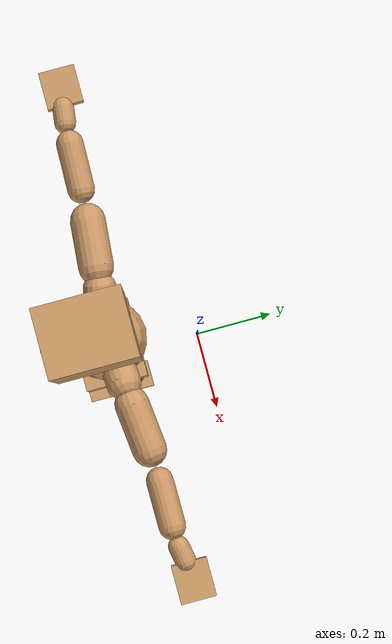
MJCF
<mujoco model="humanoid">
  <option integrator="implicitfast" />

  <visual>
    <global offwidth="1280" offheight="960" />
    <headlight active="1" ambient="0.34 0.34 0.34" diffuse="0.5 0.5 0.5" />
  </visual>

  <default>
    <joint damping="2" stiffness="2" armature="0.01" limited="true" solimplimit="0 .99 .01" />
    <geom condim="1" friction="0.7 0.005 0.0001" solimp=".99 .99 .003" solref="0.015 1" margin="0.001" rgba="0.8 0.6 .4 1" />
    <default class="smplcontact">
      <geom condim="3" friction="1. 0.005 0.0001" solref="0.015 1" solimp="0.98 0.98 0.001" priority="1" />
    </default>
    <default class="stiff_medium">
      <joint stiffness="10" />
    </default>
    <default class="stiff_medium_higher">
      <joint stiffness="50" />
    </default>
    <default class="stiff_high">
      <joint stiffness="100" />
    </default>
  </default>

  <asset>
    <texture type="skybox" builtin="gradient" rgb1="0.99 0.99 0.99" rgb2="0.608 0.828 0.892" width="100" />
    <texture builtin="flat" height="1278" mark="cross" markrgb="1 1 1" name="texgeom" random="0.01" rgb1="0.8 0.6 0.4" rgb2="0.8 0.6 0.4" type="cube" width="127" />
    <texture name="texplane" type="2d" builtin="checker" markrgb="1 1 1" rgb1="0.756 0.772 0.76" rgb2="0.6 0.6 0.6" width="100" height="100" />
    <material name="MatPlane" reflectance="0.5" texture="texplane" texrepeat="1 1" texuniform="true" />
    <material name="geom" texture="texgeom" texuniform="true" />
  </asset>

  <worldbody>
    <light name="tracking_light" pos="0 0 7" dir="0 0 -1" directional="true" cutoff="100" exponent="1" diffuse="1 1 1" specular="0.1 0.1 0.1" mode="trackcom" />
    <camera name="back" pos="0 3 2.4" xyaxes="-1 0 0 0 -1 2" mode="trackcom" />
    <camera name="side" pos="-3 0 2.4" xyaxes="0 -1 0 1 0 2" mode="trackcom" />
    <camera name="front_side" pos="-2.8 -2.8 0.8" xyaxes="0.5 -0.5 0 0.1 0.1 1" mode="trackcom" />
    <geom condim="3" name="floor" pos="0 0 0" rgba="1 1 1 1" size="100 100 .2" type="plane" material="MatPlane" />
    <body name="Pelvis" pos="-0.0018 -0.2233 0.584578" euler="90 0 0">
      <site name="Pelvis" size="0.01" />
      <freejoint name="Pelvis" />
      <geom type="box" pos="-0.0000 -0.0121 -0.0055" size="0.090865 0.06137 0.07055" quat="1.0000 0.0000 0.0000 0.0000" density="3165.830099" name="Pelvis" />
      <body name="L_Hip" pos="0.04309 -0.056668 -0.004216">
        <joint name="L_Hip_x" type="hinge" pos="0 0 0" axis="1 0 0" stiffness="1.964248617021277" range="-160.0 22.92" class="stiff_medium" damping="2.340292171636988" armature="0.0012392564433294651" />
        <joint name="L_Hip_y" type="hinge" pos="0 0 0" axis="0 1 0" stiffness="1.9704117021276593" range="-70.0 70.0" class="stiff_medium" damping="1.678639269691176" armature="0.001430071590981022" />
        <joint name="L_Hip_z" type="hinge" pos="0 0 0" axis="0 0 1" stiffness="1.9691456382978723" range="-28.65 90.0" class="stiff_medium" damping="1.5619571931135656" armature="0.0012389689343791207" />
        <geom type="capsule" density="2040.816327" fromto="0.004278 -0.0465 -0.000558 0.016988 -0.186124 -0.002232" size="0.04305" name="L_Hip" />
        <body name="L_Knee" pos="0.021266 -0.232624 -0.00279">
          <joint name="L_Knee_x" type="hinge" pos="0 0 0" axis="1 0 0" range="-5.16 171.89" damping="1.2721896021680386" stiffness="0.39839951063829787" armature="0.0012695064412788165" />
          <joint name="L_Knee_y" type="hinge" pos="0 0 0" axis="0 1 0" range="-4.58 6.88" damping="1.3605686131687174" stiffness="0.3950234042553191" armature="0.0014644282237447016" />
          <joint name="L_Knee_z" type="hinge" pos="0 0 0" axis="0 0 1" range="-6.88 4.58" damping="1.2747945573324078" stiffness="0.4004859574468085" armature="0.0012680697141080246" />
          <geom type="capsule" density="1234.567901" fromto="-0.001674 -0.049352 -0.005394 -0.006758 -0.197408 -0.0217" size="0.03787" name="L_Knee" />
          <body name="L_Ankle" pos="-0.008432 -0.24676 -0.027094">
            <joint name="L_Ankle_x" type="hinge" pos="0 0 0" axis="1 0 0" range="-45.84 45.84" class="stiff_medium" damping="1.0508648170214139" stiffness="2.1265999999999994" armature="0.0014424653641878144" />
            <joint name="L_Ankle_y" type="hinge" pos="0 0 0" axis="0 1 0" range="-74.48 22.92" class="stiff_medium" damping="0.5270441279637954" stiffness="2.1265999999999994" armature="0.001451328217295828" />
            <joint name="L_Ankle_z" type="hinge" pos="0 0 0" axis="0 0 1" range="-4.58 4.58" class="stiff_medium" damping="1.0749520572058273" stiffness="2.1265999999999994" armature="0.0015093497252931655" />
            <geom type="box" pos="0.014446 -0.014818 0.015004" size="0.03381 0.03248 0.0595" quat="1.0000 0.0000 0.0000 0.0000" density="449.071558" name="L_Ankle" class="smplcontact" />
            <body name="L_Toe" pos="0.016368 -0.034596 0.073966">
              <joint name="L_Toe_x" type="hinge" pos="0 0 0" axis="1 0 0" range="-91.67 22.92" stiffness="0.42531999999999986" armature="0.0015429928969774396" damping="0.36228876298953694"/>
              <joint name="L_Toe_y" type="hinge" pos="0 0 0" axis="0 1 0" range="-4.58 4.58" stiffness="0.42531999999999986" armature="0.001583674228747301" damping="0.3670336014510938"/>
              <joint name="L_Toe_z" type="hinge" pos="0 0 0" axis="0 0 1" range="-4.58 4.58" stiffness="0.42531999999999986" armature="0.0016659296919228983" damping="0.37644474138142686"/>
              <geom type="box" pos="-0.00186 0.00341 0.015376" size="0.03346 0.014 0.03472" quat="1.0000 0.0000 0.0000 0.0000" density="423.206892" name="L_Toe" class="smplcontact" />
            </body>
          </body>
        </body>
      </body>
      <body name="R_Hip" pos="-0.041974 -0.05611 -0.002666">
        <joint name="R_Hip_x" type="hinge" pos="0 0 0" axis="1 0 0" stiffness="1.964248617021277" range="-160.0 22.92" class="stiff_medium" damping="2.340292171636988" armature="0.0012392564433294651" />
        <joint name="R_Hip_y" type="hinge" pos="0 0 0" axis="0 1 0" stiffness="1.9704117021276593" range="-70.0 70.0" class="stiff_medium" damping="1.678639269691176" armature="0.001430071590981022" />
        <joint name="R_Hip_z" type="hinge" pos="0 0 0" axis="0 0 1" stiffness="1.9691456382978723" range="-90.0 28.65" class="stiff_medium" damping="1.5619571931135656" armature="0.0012389689343791207" />
        <geom type="capsule" density="2040.816327" fromto="-0.004774 -0.04743 -0.001116 -0.018972 -0.189782 -0.004402" size="0.04242" name="R_Hip" />
        <body name="R_Knee" pos="-0.023746 -0.237212 -0.005518">
          <joint name="R_Knee_x" type="hinge" pos="0 0 0" axis="1 0 0" range="-5.16 171.89" damping="1.2721896021680386" stiffness="0.39839951063829787" armature="0.0012695064412788165" />
          <joint name="R_Knee_y" type="hinge" pos="0 0 0" axis="0 1 0" range="-6.88 4.58" damping="1.3605686131687174" stiffness="0.3950234042553191" armature="0.0014644282237447016" />
          <joint name="R_Knee_z" type="hinge" pos="0 0 0" axis="0 0 1" range="-4.58 6.88" damping="1.2747945573324078" stiffness="0.4004859574468085" armature="0.0012680697141080246" />
          <geom type="capsule" density="1234.567901" fromto="0.001984 -0.049414 -0.00527 0.007812 -0.197594 -0.020956" size="0.03787" name="R_Knee" />
          <body name="R_Ankle" pos="0.009796 -0.247008 -0.026226">
            <joint name="R_Ankle_x" type="hinge" pos="0 0 0" axis="1 0 0" range="-45.84 45.84" class="stiff_medium" damping="1.0508648170214139" stiffness="2.1265999999999994" armature="0.0014424653641878144" />
            <joint name="R_Ankle_y" type="hinge" pos="0 0 0" axis="0 1 0" range="-22.92 74.48" class="stiff_medium" damping="0.5270441279637954" stiffness="2.1265999999999994" armature="0.001451328217295828" />
            <joint name="R_Ankle_z" type="hinge" pos="0 0 0" axis="0 0 1" range="-4.58 4.58" class="stiff_medium" damping="1.0749520572058273" stiffness="2.1265999999999994" armature="0.0015093497252931655" />
            <geom type="box" pos="-0.013144 -0.010788 0.015872" size="0.03381 0.03346 0.06055" quat="1.0000 0.0000 0.0000 0.0000" density="434.700981" name="R_Ankle" class="smplcontact" />
            <body name="R_Toe" pos="-0.015748 -0.029822 0.076446">
              <joint name="R_Toe_x" type="hinge" pos="0 0 0" axis="1 0 0" range="-91.67 22.92" stiffness="0.42531999999999986" armature="0.0015429928969774396" damping="0.36228876298953694"/>
              <joint name="R_Toe_y" type="hinge" pos="0 0 0" axis="0 1 0" range="-4.58 4.58" stiffness="0.42531999999999986" armature="0.001583674228747301" damping="0.3670336014510938"/>
              <joint name="R_Toe_z" type="hinge" pos="0 0 0" axis="0 0 1" range="-4.58 4.58" stiffness="0.42531999999999986" armature="0.0016659296919228983" damping="0.37644474138142686"/>
              <geom type="box" pos="0.002604 0.00279 0.014074" size="0.03353 0.01512 0.03451" quat="1.0000 0.0000 0.0000 0.0000" density="407.384095" name="R_Toe" class="smplcontact" />
            </body>
          </body>
        </body>
      </body>
      <body name="Torso" pos="-0.001875 0.08175 -0.020025">
        <joint name="Torso_x" type="hinge" pos="0 0 0" axis="1 0 0" range="-25.78 57.3" class="stiff_medium" damping="8.942708721868092" stiffness="6.05659090909091" armature="0.005868504098137897" />
        <joint name="Torso_y" type="hinge" pos="0 0 0" axis="0 1 0" range="-57.3 57.3" class="stiff_high" damping="6.516377452705331" stiffness="63.299669767441856" armature="0.0016770693773811485" />
        <joint name="Torso_z" type="hinge" pos="0 0 0" axis="0 0 1" range="-34.38 34.38" class="stiff_high" damping="10.087002935103227" stiffness="57.75292820512819" armature="0.0044044359037255865" />
        <geom type="capsule" density="2040.816327" fromto="0.001875 0.0456 0.000375 0.00225 0.055725 0.00045" size="0.065365" name="Torso" />
        <body name="Spine" pos="0.004125 0.1014 0.000825">
          <joint name="Spine_x" type="hinge" pos="0 0 0" axis="1 0 0" stiffness="6.635262045454545" range="-25.78 57.3" class="stiff_medium" damping="10.546158586263955" armature="0.007449858057331447" />
          <joint name="Spine_y" type="hinge" pos="0 0 0" axis="0 1 0" stiffness="6.90587" range="-57.3 57.3" class="stiff_high" damping="2.7061297424480735" armature="0.0016569097609538327" />
          <joint name="Spine_z" type="hinge" pos="0 0 0" axis="0 0 1" stiffness="14.152287368421053" range="-34.38 34.38" class="stiff_high" damping="6.561485086504837" armature="0.004225179433664929" />
          <geom type="capsule" density="2040.816327" fromto="0.000525 0.01785 0.00855 0.0006 0.021825 0.0105" size="0.064175" name="Spine" />
          <body name="Chest" pos="0.001125 0.039675 0.01905">
            <joint name="Chest_x" type="hinge" pos="0 0 0" axis="1 0 0" stiffness="7.712242631578947" range="-25.78 57.3" class="stiff_medium" damping="12.02954776023271" armature="0.008339411402459003" />
            <joint name="Chest_y" type="hinge" pos="0 0 0" axis="0 1 0" stiffness="6.385" range="-57.3 57.3" class="stiff_high" damping="2.5711600290813834" armature="0.001617772096502002" />
            <joint name="Chest_z" type="hinge" pos="0 0 0" axis="0 0 1" stiffness="15.812202285714285" range="-34.38 34.38" class="stiff_high" damping="6.774111260432403" armature="0.004030693664047288" />
            <geom type="capsule" density="2040.816327" fromto="-0.000675 0.05115 -0.012975 -0.00075 0.062475 -0.0159" size="0.08517" name="Chest" />
            <body name="Neck" pos="-0.0021 0.160425 -0.032175">
              <joint name="Neck_x" type="hinge" pos="0 0 0" axis="1 0 0" range="-28.65 57.3" class="stiff_medium_higher" damping="16.25255180453911" stiffness="76.60756249999999" armature="0.01724016738942891" />
              <joint name="Neck_y" type="hinge" pos="0 0 0" axis="0 1 0" range="-40.11 40.11" class="stiff_medium_higher" damping="16.671741462280213" stiffness="76.3876680851064" armature="0.018193182901947075" />
              <joint name="Neck_z" type="hinge" pos="0 0 0" axis="0 0 1" range="-40.11 40.11" class="stiff_medium_higher" damping="16.419534288795518" stiffness="78.09847765957448" armature="0.01726033044050507" />
              <geom type="capsule" density="1000" fromto="0.00075 0.00975 0.007725 0.003075 0.039 0.030825" size="0.03706" name="Neck" />
              <body name="Head" pos="0.00546 0.06825 0.053865">
                <joint name="Head_x" type="hinge" pos="0 0 0" axis="1 0 0" range="-28.65 57.3" class="stiff_medium_higher" damping="3.416195249245133" stiffness="79.84595" armature="0.018270165833340665" />
                <joint name="Head_y" type="hinge" pos="0 0 0" axis="0 1 0" range="-40.11 40.11" class="stiff_medium_higher" damping="3.5706265532181534" stiffness="79.84595" armature="0.019959331034552392" />
                <joint name="Head_z" type="hinge" pos="0 0 0" axis="0 0 1" range="-40.11 40.11" class="stiff_medium_higher" damping="3.408366896374547" stiffness="79.84595" armature="0.018186528089874726" />
                <geom type="box" pos="-0.00441 0.09198 -0.01218" size="0.06969 0.13271 0.0874" quat="1.0000 0.0000 0.0000 0.0000" density="1018.069894" name="Head" />
                <geom type="capsule" name="nose" size="0.023 0.0115" pos="0 0.0735 0.0525" quat="1 0 0 0" mass="0" contype="0" conaffinity="0" />
              </body>
            </body>
            <body name="L_Thorax" pos="0.05122 0.079105 -0.022165">
              <joint name="L_Thorax_x" type="hinge" pos="0 0 0" axis="1 0 0" range="-10.89 4.58" class="stiff_medium_higher" damping="3.56127712657367" stiffness="10.660500531914895" armature="0.0014871129566440117" />
              <joint name="L_Thorax_y" type="hinge" pos="0 0 0" axis="0 1 0" range="-28.65 17.19" class="stiff_medium_higher" damping="3.4438596947522244" stiffness="10.642045212765957" armature="0.0013930792155101555" />
              <joint name="L_Thorax_z" type="hinge" pos="0 0 0" axis="0 0 1" range="-31.51 40.11" class="stiff_medium_higher" damping="3.443909530947841" stiffness="10.643002127659575" armature="0.0013929942786689942" />
              <geom type="capsule" density="1000" fromto="0.01183 0.003965 -0.00117 0.04732 0.01586 -0.004615" size="0.03647" name="L_Thorax" />
              <body name="L_Shoulder" pos="0.05915 0.019825 -0.005785">
                <joint name="L_Shoulder_x" type="hinge" pos="0 0 0" axis="1 0 0" range="-97.4 97.4" class="stiff_medium" damping="1.0818658282988043" stiffness="2.1337828723404253" armature="0.0015236811028232118" />
                <joint name="L_Shoulder_y" type="hinge" pos="0 0 0" axis="0 1 0" range="-108.86 80.21" class="stiff_medium" damping="1.034835579648563" stiffness="2.1304098936170215" armature="0.001396294519184475" />
                <joint name="L_Shoulder_z" type="hinge" pos="0 0 0" axis="0 0 1" range="-97.4 85.94" class="stiff_medium" damping="1.0347169216992047" stiffness="2.1300911702127663" armature="0.0013961832075318795" />
                <geom type="capsule" density="1000" fromto="0.033735 -0.00169 -0.003575 0.135005 -0.00663 -0.0143" size="0.03619" name="L_Shoulder" />
                <body name="L_Elbow" pos="0.16874 -0.00832 -0.017875">
                  <joint name="L_Elbow_x" type="hinge" pos="0 0 0" axis="1 0 0" range="-17.19 4.58" damping="0.9216432868582979" stiffness="0.42935538297872344" armature="0.001582700731162017" />
                  <joint name="L_Elbow_y" type="hinge" pos="0 0 0" axis="0 1 0" range="-180.0 17.19" damping="0.8705183077487909" stiffness="0.42935406382978725" armature="0.0014119854692722623" />
                  <joint name="L_Elbow_z" type="hinge" pos="0 0 0" axis="0 0 1" range="-100.84 4.58" damping="0.8704106557696368" stiffness="0.42942553191489363" armature="0.0014114013320055286" />
                  <geom type="capsule" density="1000" fromto="0.03237 0.00117 -0.00013 0.12961 0.00468 -0.000585" size="0.02835" name="L_Elbow" />
                  <body name="L_Wrist" pos="0.16198 0.00585 -0.00078">
                    <joint name="L_Wrist_x" type="hinge" pos="0 0 0" axis="1 0 0" range="-180.0 22.92" stiffness="0.4400977872340426" armature="0.0016013225779245202" damping="0.3754300262878541"/>
                    <joint name="L_Wrist_y" type="hinge" pos="0 0 0" axis="0 1 0" range="-17.19 17.19" stiffness="0.4392689574468085" armature="0.0014664946634854348" damping="0.3589388755569826"/>
                    <joint name="L_Wrist_z" type="hinge" pos="0 0 0" axis="0 0 1" range="-22.92 22.92" stiffness="0.4395612340425532" armature="0.001458940479939788" damping="0.3581322877811963"/>
                    <geom type="capsule" density="1000" fromto="0.01092 -0.00104 -0.00195 0.04368 -0.004225 -0.0078" size="0.02226" name="L_Wrist" class="smplcontact" />
                    <body name="L_Hand" pos="0.0546 -0.00533 -0.009685">
                      <joint name="L_Hand_x" type="hinge" pos="0 0 0" axis="1 0 0" range="-17.19 17.19" stiffness="0.4459000000000003" armature="0.0016706133446854452" damping="0.3859861371591577"/>
                      <joint name="L_Hand_y" type="hinge" pos="0 0 0" axis="0 1 0" range="-51.57 51.57" stiffness="0.4459000000000003" armature="0.0015587158200069523" damping="0.37283545543338564"/>
                      <joint name="L_Hand_z" type="hinge" pos="0 0 0" axis="0 0 1" range="-91.67 91.67" stiffness="0.4459000000000003" armature="0.0015288880059389088" damping="0.3692509070667694"/>
                      <geom type="box" pos="0.032045 0.00065 -0.00377" size="0.04095 0.01106 0.03766" quat="1.0000 0.0000 0.0000 0.0000" density="400.552564" name="L_Hand" class="smplcontact" />
                    </body>
                  </body>
                </body>
              </body>
            </body>
            <body name="R_Thorax" pos="-0.05317 0.07722 -0.02509">
              <joint name="R_Thorax_x" type="hinge" pos="0 0 0" axis="1 0 0" range="-10.89 4.58" class="stiff_medium_higher" damping="3.56127712657367" stiffness="10.660500531914895" armature="0.0014871129566440117" />
              <joint name="R_Thorax_y" type="hinge" pos="0 0 0" axis="0 1 0" range="-17.19 28.65" class="stiff_medium_higher" damping="3.4438596947522244" stiffness="10.642045212765957" armature="0.0013930792155101555" />
              <joint name="R_Thorax_z" type="hinge" pos="0 0 0" axis="0 0 1" range="-40.11 31.51" class="stiff_medium_higher" damping="3.443909530947841" stiffness="10.643002127659575" armature="0.0013929942786689942" />
              <geom type="capsule" density="1000" fromto="-0.01248 0.004225 -0.00117 -0.04992 0.0169 -0.004745" size="0.03577" name="R_Thorax" />
              <body name="R_Shoulder" pos="-0.0624 0.02119 -0.005915">
                <joint name="R_Shoulder_x" type="hinge" pos="0 0 0" axis="1 0 0" range="-97.4 97.4" class="stiff_medium" damping="1.0818658282988043" stiffness="2.1337828723404253" armature="0.0015236811028232118" />
                <joint name="R_Shoulder_y" type="hinge" pos="0 0 0" axis="0 1 0" range="-80.21 108.86" class="stiff_medium" damping="1.034835579648563" stiffness="2.1304098936170215" armature="0.001396294519184475" />
                <joint name="R_Shoulder_z" type="hinge" pos="0 0 0" axis="0 0 1" range="-85.94 97.4" class="stiff_medium" damping="1.0347169216992047" stiffness="2.1300911702127663" armature="0.0013961832075318795" />
                <geom type="capsule" density="1000" fromto="-0.032955 -0.001755 -0.002795 -0.13195 -0.006955 -0.011115" size="0.03717" name="R_Shoulder" />
                <body name="R_Elbow" pos="-0.164905 -0.008645 -0.01391">
                  <joint name="R_Elbow_x" type="hinge" pos="0 0 0" axis="1 0 0" range="-17.19 4.58" damping="0.9216432868582979" stiffness="0.42935538297872344" armature="0.001582700731162017" />
                  <joint name="R_Elbow_y" type="hinge" pos="0 0 0" axis="0 1 0" range="-17.19 180.0" damping="0.8705183077487909" stiffness="0.42935406382978725" armature="0.0014119854692722623" />
                  <joint name="R_Elbow_z" type="hinge" pos="0 0 0" axis="0 0 1" range="-4.58 100.84" damping="0.8704106557696368" stiffness="0.42942553191489363" armature="0.0014114013320055286" />
                  <geom type="capsule" density="1000" fromto="-0.033215 0.00104 -0.000715 -0.13273 0.00403 -0.00286" size="0.02856" name="R_Elbow" />
                  <body name="R_Wrist" pos="-0.165945 0.00507 -0.00364">
                    <joint name="R_Wrist_x" type="hinge" pos="0 0 0" axis="1 0 0" range="-180.0 22.92" stiffness="0.4400977872340426" armature="0.0016013225779245202" damping="0.3754300262878541"/>
                    <joint name="R_Wrist_y" type="hinge" pos="0 0 0" axis="0 1 0" range="-17.19 17.19" stiffness="0.4392689574468085" armature="0.0014664946634854348" damping="0.3589388755569826"/>
                    <joint name="R_Wrist_z" type="hinge" pos="0 0 0" axis="0 0 1" range="-22.92 22.92" stiffness="0.4395612340425532" armature="0.001458940479939788" damping="0.3581322877811963"/>
                    <geom type="capsule" density="1000" fromto="-0.010985 -0.00078 -0.001365 -0.044005 -0.003185 -0.005395" size="0.02282" name="R_Wrist" class="smplcontact" />
                    <body name="R_Hand" pos="-0.05499 -0.003965 -0.006695">
                      <joint name="R_Hand_x" type="hinge" pos="0 0 0" axis="1 0 0" range="-17.19 17.19" stiffness="0.4459000000000003" armature="0.0016706133446854452" damping="0.3859861371591577"/>
                      <joint name="R_Hand_y" type="hinge" pos="0 0 0" axis="0 1 0" range="-51.57 51.57" stiffness="0.4459000000000003" armature="0.0015587158200069523" damping="0.37283545543338564"/>
                      <joint name="R_Hand_z" type="hinge" pos="0 0 0" axis="0 0 1" range="-91.67 91.67" stiffness="0.4459000000000003" armature="0.0015288880059389088" damping="0.3692509070667694"/>
                      <geom type="box" pos="-0.03003 -0.000585 -0.005135" size="0.03983 0.01148 0.03822" quat="1.0000 0.0000 0.0000 0.0000" density="403.679611" name="R_Hand" class="smplcontact" />
                    </body>
                  </body>
                </body>
              </body>
            </body>
          </body>
        </body>
      </body>
    </body>
  </worldbody>
  <contact>
    <exclude body1="Torso" body2="Chest" />
    <exclude body1="Head" body2="Chest" />
    <exclude body1="R_Knee" body2="R_Toe" />
    <exclude body1="R_Knee" body2="L_Ankle" />
    <exclude body1="R_Knee" body2="L_Toe" />
    <exclude body1="L_Knee" body2="L_Toe" />
    <exclude body1="L_Knee" body2="R_Ankle" />
    <exclude body1="L_Knee" body2="R_Toe" />
    <exclude body1="L_Shoulder" body2="Chest" />
    <exclude body1="R_Shoulder" body2="Chest" />
  </contact>
  <sensor>
    <framelinvel name="sensor_Pelvis_framelinvel" objtype="xbody" objname="Pelvis" />
    <framelinvel name="sensor_L_Hip_framelinvel" objtype="xbody" objname="L_Hip" />
    <framelinvel name="sensor_L_Knee_framelinvel" objtype="xbody" objname="L_Knee" />
    <framelinvel name="sensor_L_Ankle_framelinvel" objtype="xbody" objname="L_Ankle" />
    <framelinvel name="sensor_L_Toe_framelinvel" objtype="xbody" objname="L_Toe" />
    <framelinvel name="sensor_R_Hip_framelinvel" objtype="xbody" objname="R_Hip" />
    <framelinvel name="sensor_R_Knee_framelinvel" objtype="xbody" objname="R_Knee" />
    <framelinvel name="sensor_R_Ankle_framelinvel" objtype="xbody" objname="R_Ankle" />
    <framelinvel name="sensor_R_Toe_framelinvel" objtype="xbody" objname="R_Toe" />
    <framelinvel name="sensor_Torso_framelinvel" objtype="xbody" objname="Torso" />
    <framelinvel name="sensor_Spine_framelinvel" objtype="xbody" objname="Spine" />
    <framelinvel name="sensor_Chest_framelinvel" objtype="xbody" objname="Chest" />
    <framelinvel name="sensor_Neck_framelinvel" objtype="xbody" objname="Neck" />
    <framelinvel name="sensor_Head_framelinvel" objtype="xbody" objname="Head" />
    <framelinvel name="sensor_L_Thorax_framelinvel" objtype="xbody" objname="L_Thorax" />
    <framelinvel name="sensor_L_Shoulder_framelinvel" objtype="xbody" objname="L_Shoulder" />
    <framelinvel name="sensor_L_Elbow_framelinvel" objtype="xbody" objname="L_Elbow" />
    <framelinvel name="sensor_L_Wrist_framelinvel" objtype="xbody" objname="L_Wrist" />
    <framelinvel name="sensor_L_Hand_framelinvel" objtype="xbody" objname="L_Hand" />
    <framelinvel name="sensor_R_Thorax_framelinvel" objtype="xbody" objname="R_Thorax" />
    <framelinvel name="sensor_R_Shoulder_framelinvel" objtype="xbody" objname="R_Shoulder" />
    <framelinvel name="sensor_R_Elbow_framelinvel" objtype="xbody" objname="R_Elbow" />
    <framelinvel name="sensor_R_Wrist_framelinvel" objtype="xbody" objname="R_Wrist" />
    <framelinvel name="sensor_R_Hand_framelinvel" objtype="xbody" objname="R_Hand" />
    <frameangvel name="sensor_Pelvis_frameangvel" objtype="xbody" objname="Pelvis" />
    <frameangvel name="sensor_L_Hip_frameangvel" objtype="xbody" objname="L_Hip" />
    <frameangvel name="sensor_L_Knee_frameangvel" objtype="xbody" objname="L_Knee" />
    <frameangvel name="sensor_L_Ankle_frameangvel" objtype="xbody" objname="L_Ankle" />
    <frameangvel name="sensor_L_Toe_frameangvel" objtype="xbody" objname="L_Toe" />
    <frameangvel name="sensor_R_Hip_frameangvel" objtype="xbody" objname="R_Hip" />
    <frameangvel name="sensor_R_Knee_frameangvel" objtype="xbody" objname="R_Knee" />
    <frameangvel name="sensor_R_Ankle_frameangvel" objtype="xbody" objname="R_Ankle" />
    <frameangvel name="sensor_R_Toe_frameangvel" objtype="xbody" objname="R_Toe" />
    <frameangvel name="sensor_Torso_frameangvel" objtype="xbody" objname="Torso" />
    <frameangvel name="sensor_Spine_frameangvel" objtype="xbody" objname="Spine" />
    <frameangvel name="sensor_Chest_frameangvel" objtype="xbody" objname="Chest" />
    <frameangvel name="sensor_Neck_frameangvel" objtype="xbody" objname="Neck" />
    <frameangvel name="sensor_Head_frameangvel" objtype="xbody" objname="Head" />
    <frameangvel name="sensor_L_Thorax_frameangvel" objtype="xbody" objname="L_Thorax" />
    <frameangvel name="sensor_L_Shoulder_frameangvel" objtype="xbody" objname="L_Shoulder" />
    <frameangvel name="sensor_L_Elbow_frameangvel" objtype="xbody" objname="L_Elbow" />
    <frameangvel name="sensor_L_Wrist_frameangvel" objtype="xbody" objname="L_Wrist" />
    <frameangvel name="sensor_L_Hand_frameangvel" objtype="xbody" objname="L_Hand" />
    <frameangvel name="sensor_R_Thorax_frameangvel" objtype="xbody" objname="R_Thorax" />
    <frameangvel name="sensor_R_Shoulder_frameangvel" objtype="xbody" objname="R_Shoulder" />
    <frameangvel name="sensor_R_Elbow_frameangvel" objtype="xbody" objname="R_Elbow" />
    <frameangvel name="sensor_R_Wrist_frameangvel" objtype="xbody" objname="R_Wrist" />
    <frameangvel name="sensor_R_Hand_frameangvel" objtype="xbody" objname="R_Hand" />
    <subtreelinvel name="Chest_subtreelinvel" body="Chest" />
    <gyro name="Pelvis_gyro" site="Pelvis" />
  </sensor>
<actuator>
    <general name="L_Hip_x" joint="L_Hip_x" biastype="affine" gainprm="56.43876810318005" biasprm="-42.29513629774722 -35.35647510638299 -0.31203895621826505" ctrllimited="true" ctrlrange="-1 1" forcerange="-70.71295021276597 70.71295021276597" />
    <general name="L_Hip_y" joint="L_Hip_y" biastype="affine" gainprm="43.3316164956613" biasprm="0.0 -35.46741063829787 -0.33572785393823523" ctrllimited="true" ctrlrange="-1 1" forcerange="-70.93482127659574 70.93482127659574" />
    <general name="L_Hip_z" joint="L_Hip_z" biastype="affine" gainprm="36.69994871744894" biasprm="18.97633252267587 -35.4446214893617 -0.3123914386227131" ctrllimited="true" ctrlrange="-1 1" forcerange="-70.8892429787234 70.8892429787234" />
    <general name="L_Knee_x" joint="L_Knee_x" biastype="affine" gainprm="55.39934229201344" biasprm="52.17019113441062 -35.85595595744681 -0.31804740054200964" ctrllimited="true" ctrlrange="-1 1" forcerange="-71.71191191489362 71.71191191489362" />
    <general name="L_Knee_y" joint="L_Knee_y" biastype="affine" gainprm="3.5554725200650115" biasprm="0.7135765092626114 -35.55210638297872 -0.34014215329217934" ctrllimited="true" ctrlrange="-1 1" forcerange="-71.10421276595744 71.10421276595744" />
    <general name="L_Knee_z" joint="L_Knee_z" biastype="affine" gainprm="3.6046391202019" biasprm="-0.7234441515239416 -36.04373617021276 -0.31869863933310194" ctrllimited="true" ctrlrange="-1 1" forcerange="-72.08747234042552 72.08747234042552" />
    <general name="L_Ankle_x" joint="L_Ankle_x" biastype="affine" gainprm="15.31264786788833" biasprm="0.0 -19.139399999999995 -0.35028827234047133" ctrllimited="true" ctrlrange="-1 1" forcerange="-38.27879999999999 38.27879999999999" />
    <general name="L_Ankle_y" joint="L_Ankle_y" biastype="affine" gainprm="16.26801813189707" biasprm="-8.611694197952904 -19.139399999999995 -0.35136275197586364" ctrllimited="true" ctrlrange="-1 1" forcerange="-38.27879999999999 38.27879999999999" />
    <general name="L_Ankle_z" joint="L_Ankle_z" biastype="affine" gainprm="1.5299286046014078" biasprm="0.0 -19.139399999999995 -0.3583173524019424" ctrllimited="true" ctrlrange="-1 1" forcerange="-38.27879999999999 38.27879999999999" />
    <general name="L_Toe_x" joint="L_Toe_x" biastype="affine" gainprm="15.3113116857009" biasprm="-9.18625253854557 -15.311519999999994 -0.14491550519581478" ctrllimited="true" ctrlrange="-1 1" forcerange="-30.62303999999999 30.62303999999999" />
    <general name="L_Toe_y" joint="L_Toe_y" biastype="affine" gainprm="1.2239428836811264" biasprm="0.0 -15.311519999999994 -0.14681344058043752" ctrllimited="true" ctrlrange="-1 1" forcerange="-30.62303999999999 30.62303999999999" />
    <general name="L_Toe_z" joint="L_Toe_z" biastype="affine" gainprm="1.2239428836811264" biasprm="0.0 -15.311519999999994 -0.15057789655257076" ctrllimited="true" ctrlrange="-1 1" forcerange="-30.62303999999999 30.62303999999999" />
    <general name="R_Hip_x" joint="R_Hip_x" biastype="affine" gainprm="56.43876810318005" biasprm="-42.29513629774722 -35.35647510638299 -0.31203895621826505" ctrllimited="true" ctrlrange="-1 1" forcerange="-70.71295021276597 70.71295021276597" />
    <general name="R_Hip_y" joint="R_Hip_y" biastype="affine" gainprm="43.3316164956613" biasprm="0.0 -35.46741063829787 -0.33572785393823523" ctrllimited="true" ctrlrange="-1 1" forcerange="-70.93482127659574 70.93482127659574" />
    <general name="R_Hip_z" joint="R_Hip_z" biastype="affine" gainprm="36.69994871744894" biasprm="-18.97633252267587 -35.4446214893617 -0.3123914386227131" ctrllimited="true" ctrlrange="-1 1" forcerange="-70.8892429787234 70.8892429787234" />
    <general name="R_Knee_x" joint="R_Knee_x" biastype="affine" gainprm="55.39934229201344" biasprm="52.17019113441062 -35.85595595744681 -0.31804740054200964" ctrllimited="true" ctrlrange="-1 1" forcerange="-71.71191191489362 71.71191191489362" />
    <general name="R_Knee_y" joint="R_Knee_y" biastype="affine" gainprm="3.5554725200650115" biasprm="-0.7135765092626114 -35.55210638297872 -0.34014215329217934" ctrllimited="true" ctrlrange="-1 1" forcerange="-71.10421276595744 71.10421276595744" />
    <general name="R_Knee_z" joint="R_Knee_z" biastype="affine" gainprm="3.6046391202019" biasprm="0.7234441515239416 -36.04373617021276 -0.31869863933310194" ctrllimited="true" ctrlrange="-1 1" forcerange="-72.08747234042552 72.08747234042552" />
    <general name="R_Ankle_x" joint="R_Ankle_x" biastype="affine" gainprm="15.31264786788833" biasprm="0.0 -19.139399999999995 -0.35028827234047133" ctrllimited="true" ctrlrange="-1 1" forcerange="-38.27879999999999 38.27879999999999" />
    <general name="R_Ankle_y" joint="R_Ankle_y" biastype="affine" gainprm="16.26801813189707" biasprm="8.611694197952904 -19.139399999999995 -0.35136275197586364" ctrllimited="true" ctrlrange="-1 1" forcerange="-38.27879999999999 38.27879999999999" />
    <general name="R_Ankle_z" joint="R_Ankle_z" biastype="affine" gainprm="1.5299286046014078" biasprm="0.0 -19.139399999999995 -0.3583173524019424" ctrllimited="true" ctrlrange="-1 1" forcerange="-38.27879999999999 38.27879999999999" />
    <general name="R_Toe_x" joint="R_Toe_x" biastype="affine" gainprm="15.3113116857009" biasprm="-9.18625253854557 -15.311519999999994 -0.14491550519581478" ctrllimited="true" ctrlrange="-1 1" forcerange="-30.62303999999999 30.62303999999999" />
    <general name="R_Toe_y" joint="R_Toe_y" biastype="affine" gainprm="1.2239428836811264" biasprm="0.0 -15.311519999999994 -0.14681344058043752" ctrllimited="true" ctrlrange="-1 1" forcerange="-30.62303999999999 30.62303999999999" />
    <general name="R_Toe_z" joint="R_Toe_z" biastype="affine" gainprm="1.2239428836811264" biasprm="0.0 -15.311519999999994 -0.15057789655257076" ctrllimited="true" ctrlrange="-1 1" forcerange="-30.62303999999999 30.62303999999999" />
    <general name="Torso_x" joint="Torso_x" biastype="affine" gainprm="105.38610215345057" biasprm="39.98278695085172 -145.35818181818183 -2.384722325831491" ctrllimited="true" ctrlrange="-1 1" forcerange="-218.03727272727275 218.03727272727275" />
    <general name="Torso_y" joint="Torso_y" biastype="affine" gainprm="151.93039802226622" biasprm="0.0 -151.91920744186046 -1.3032754905410662" ctrllimited="true" ctrlrange="-1 1" forcerange="-227.8788111627907 227.8788111627907" />
    <general name="Torso_z" joint="Torso_z" biastype="affine" gainprm="83.17034260740753" biasprm="0.0 -138.60702769230767 -2.0174005870206453" ctrllimited="true" ctrlrange="-1 1" forcerange="-207.9105415384615 207.9105415384615" />
    <general name="Spine_x" joint="Spine_x" biastype="affine" gainprm="115.45511563074105" biasprm="43.80290376361287 -159.24628909090907 -2.8123089563370547" ctrllimited="true" ctrlrange="-1 1" forcerange="-238.86943363636362 238.86943363636362" />
    <general name="Spine_y" joint="Spine_y" biastype="affine" gainprm="165.75308870405655" biasprm="0.0 -165.74088 -1.3530648712240367" ctrllimited="true" ctrlrange="-1 1" forcerange="-248.61132000000003 248.61132000000003" />
    <general name="Spine_z" joint="Spine_z" biastype="affine" gainprm="101.90397488845841" biasprm="0.0 -169.82744842105262 -2.1871616955016124" ctrllimited="true" ctrlrange="-1 1" forcerange="-254.74117263157893 254.74117263157893" />
    <general name="Chest_x" joint="Chest_x" biastype="affine" gainprm="134.19483039275812" biasprm="50.91262703394 -185.09382315789475 -3.2078794027287225" ctrllimited="true" ctrlrange="-1 1" forcerange="-277.6407347368421 277.6407347368421" />
    <general name="Chest_y" joint="Chest_y" biastype="affine" gainprm="153.25128787182513" biasprm="0.0 -153.23999999999998 -1.2855800145406917" ctrllimited="true" ctrlrange="-1 1" forcerange="-229.85999999999999 229.85999999999999" />
    <general name="Chest_z" joint="Chest_z" biastype="affine" gainprm="113.8562426488112" biasprm="0.0 -189.74642742857142 -2.258037086810801" ctrllimited="true" ctrlrange="-1 1" forcerange="-284.6196411428571 284.6196411428571" />
    <general name="Neck_x" joint="Neck_x" biastype="affine" gainprm="41.371130980664454" biasprm="13.790376993554817 -55.157444999999996 -1.3002041443631287" ctrllimited="true" ctrlrange="-1 1" forcerange="-110.31488999999999 110.31488999999999" />
    <general name="Neck_y" joint="Neck_y" biastype="affine" gainprm="38.50222063319177" biasprm="0.0 -54.99912102127661 -1.3337393169824172" ctrllimited="true" ctrlrange="-1 1" forcerange="-109.99824204255322 109.99824204255322" />
    <general name="Neck_z" joint="Neck_z" biastype="affine" gainprm="39.36453217311414" biasprm="0.0 -56.23090391489363 -1.3135627431036416" ctrllimited="true" ctrlrange="-1 1" forcerange="-112.46180782978726 112.46180782978726" />
    <general name="Head_x" joint="Head_x" biastype="affine" gainprm="28.746659362997704" biasprm="9.5822197876659 -38.326056 -1.3664780996980532" ctrllimited="true" ctrlrange="-1 1" forcerange="-76.652112 76.652112" />
    <general name="Head_y" joint="Head_y" biastype="affine" gainprm="26.83021540546452" biasprm="0.0 -38.326056 -1.4282506212872614" ctrllimited="true" ctrlrange="-1 1" forcerange="-76.652112 76.652112" />
    <general name="Head_z" joint="Head_z" biastype="affine" gainprm="26.83021540546452" biasprm="0.0 -38.326056 -1.363346758549819" ctrllimited="true" ctrlrange="-1 1" forcerange="-76.652112 76.652112" />
    <general name="L_Thorax_x" joint="L_Thorax_x" biastype="affine" gainprm="3.454033325949973" biasprm="-1.4088526365057752 -25.585201276595747 -0.2849021701258936" ctrllimited="true" ctrlrange="-1 1" forcerange="-51.170402553191494 51.170402553191494" />
    <general name="L_Thorax_y" joint="L_Thorax_y" biastype="affine" gainprm="10.217115955812524" biasprm="-2.554278988953131 -25.5409085106383 -0.27550877558017794" ctrllimited="true" ctrlrange="-1 1" forcerange="-51.0818170212766 51.0818170212766" />
    <general name="L_Thorax_z" joint="L_Thorax_z" biastype="affine" gainprm="15.964564626452477" biasprm="1.916996031660029 -25.543205106382977 -0.2755127624758273" ctrllimited="true" ctrlrange="-1 1" forcerange="-51.086410212765955 51.086410212765955" />
    <general name="L_Shoulder_x" joint="L_Shoulder_x" biastype="affine" gainprm="17.41116321227146" biasprm="0.0 -10.242157787234042 -0.28849755421301454" ctrllimited="true" ctrlrange="-1 1" forcerange="-20.484315574468084 20.484315574468084" />
    <general name="L_Shoulder_y" joint="L_Shoulder_y" biastype="affine" gainprm="16.872304466790254" biasprm="-2.556680187092298 -10.225967489361702 -0.2759561545729502" ctrllimited="true" ctrlrange="-1 1" forcerange="-20.451934978723404 20.451934978723404" />
    <general name="L_Shoulder_z" joint="L_Shoulder_z" biastype="affine" gainprm="16.35852072033217" biasprm="-1.0225190763336263 -10.224437617021277 -0.2759245124531213" ctrllimited="true" ctrlrange="-1 1" forcerange="-20.448875234042553 20.448875234042553" />
    <general name="L_Elbow_x" joint="L_Elbow_x" biastype="affine" gainprm="2.9364676037896777" biasprm="-1.7009121030678849 -15.456793787234044 -0.14746292589732765" ctrllimited="true" ctrlrange="-1 1" forcerange="-30.91358757446809 30.91358757446809" />
    <general name="L_Elbow_y" joint="L_Elbow_y" biastype="affine" gainprm="26.598083038398293" biasprm="-21.960717579398686 -15.456746297872341 -0.13928292923980654" ctrllimited="true" ctrlrange="-1 1" forcerange="-30.913492595744682 30.913492595744682" />
    <general name="L_Elbow_z" joint="L_Elbow_z" biastype="affine" gainprm="14.222002375486813" biasprm="-12.986245007250625 -15.45931914893617 -0.13926570492314191" ctrllimited="true" ctrlrange="-1 1" forcerange="-30.91863829787234 30.91863829787234" />
    <general name="L_Wrist_x" joint="L_Wrist_x" biastype="affine" gainprm="4.675980172246772" biasprm="-3.61966767916678 -2.6405867234042555 -0.15017201051514165" ctrllimited="true" ctrlrange="-1 1" forcerange="-5.281173446808511 5.281173446808511" />
    <general name="L_Wrist_y" joint="L_Wrist_y" biastype="affine" gainprm="0.7907423662980114" biasprm="0.0 -2.635613744680851 -0.14357555022279306" ctrllimited="true" ctrlrange="-1 1" forcerange="-5.271227489361702 5.271227489361702" />
    <general name="L_Wrist_z" joint="L_Wrist_z" biastype="affine" gainprm="1.0550246705646051" biasprm="0.0 -2.6373674042553192 -0.14325291511247853" ctrllimited="true" ctrlrange="-1 1" forcerange="-5.2747348085106385 5.2747348085106385" />
    <general name="L_Hand_x" joint="L_Hand_x" biastype="affine" gainprm="0.8026791221070504" biasprm="0.0 -2.6754000000000016 -0.1543944548636631" ctrllimited="true" ctrlrange="-1 1" forcerange="-5.350800000000003 5.350800000000003" />
    <general name="L_Hand_y" joint="L_Hand_y" biastype="affine" gainprm="2.4080373663211505" biasprm="0.0 -2.6754000000000016 -0.14913418217335425" ctrllimited="true" ctrlrange="-1 1" forcerange="-5.350800000000003 5.350800000000003" />
    <general name="L_Hand_z" joint="L_Hand_z" biastype="affine" gainprm="4.280488372516189" biasprm="0.0 -2.6754000000000016 -0.14770036282670776" ctrllimited="true" ctrlrange="-1 1" forcerange="-5.350800000000003 5.350800000000003" />
    <general name="R_Thorax_x" joint="R_Thorax_x" biastype="affine" gainprm="3.454033325949973" biasprm="-1.4088526365057752 -25.585201276595747 -0.2849021701258936" ctrllimited="true" ctrlrange="-1 1" forcerange="-51.170402553191494 51.170402553191494" />
    <general name="R_Thorax_y" joint="R_Thorax_y" biastype="affine" gainprm="10.217115955812524" biasprm="2.5542789889531297 -25.5409085106383 -0.27550877558017794" ctrllimited="true" ctrlrange="-1 1" forcerange="-51.0818170212766 51.0818170212766" />
    <general name="R_Thorax_z" joint="R_Thorax_z" biastype="affine" gainprm="15.964564626452477" biasprm="-1.916996031660029 -25.543205106382977 -0.2755127624758273" ctrllimited="true" ctrlrange="-1 1" forcerange="-51.086410212765955 51.086410212765955" />
    <general name="R_Shoulder_x" joint="R_Shoulder_x" biastype="affine" gainprm="17.41116321227146" biasprm="0.0 -10.242157787234042 -0.28849755421301454" ctrllimited="true" ctrlrange="-1 1" forcerange="-20.484315574468084 20.484315574468084" />
    <general name="R_Shoulder_y" joint="R_Shoulder_y" biastype="affine" gainprm="16.872304466790254" biasprm="2.556680187092298 -10.225967489361702 -0.2759561545729502" ctrllimited="true" ctrlrange="-1 1" forcerange="-20.451934978723404 20.451934978723404" />
    <general name="R_Shoulder_z" joint="R_Shoulder_z" biastype="affine" gainprm="16.35852072033217" biasprm="1.022519076333624 -10.224437617021277 -0.2759245124531213" ctrllimited="true" ctrlrange="-1 1" forcerange="-20.448875234042553 20.448875234042553" />
    <general name="R_Elbow_x" joint="R_Elbow_x" biastype="affine" gainprm="2.9364676037896777" biasprm="-1.7009121030678849 -15.456793787234044 -0.14746292589732765" ctrllimited="true" ctrlrange="-1 1" forcerange="-30.91358757446809 30.91358757446809" />
    <general name="R_Elbow_y" joint="R_Elbow_y" biastype="affine" gainprm="26.598083038398293" biasprm="21.960717579398686 -15.456746297872341 -0.13928292923980654" ctrllimited="true" ctrlrange="-1 1" forcerange="-30.913492595744682 30.913492595744682" />
    <general name="R_Elbow_z" joint="R_Elbow_z" biastype="affine" gainprm="14.222002375486813" biasprm="12.986245007250623 -15.45931914893617 -0.13926570492314191" ctrllimited="true" ctrlrange="-1 1" forcerange="-30.91863829787234 30.91863829787234" />
    <general name="R_Wrist_x" joint="R_Wrist_x" biastype="affine" gainprm="4.675980172246772" biasprm="-3.61966767916678 -2.6405867234042555 -0.15017201051514165" ctrllimited="true" ctrlrange="-1 1" forcerange="-5.281173446808511 5.281173446808511" />
    <general name="R_Wrist_y" joint="R_Wrist_y" biastype="affine" gainprm="0.7907423662980114" biasprm="0.0 -2.635613744680851 -0.14357555022279306" ctrllimited="true" ctrlrange="-1 1" forcerange="-5.271227489361702 5.271227489361702" />
    <general name="R_Wrist_z" joint="R_Wrist_z" biastype="affine" gainprm="1.0550246705646051" biasprm="0.0 -2.6373674042553192 -0.14325291511247853" ctrllimited="true" ctrlrange="-1 1" forcerange="-5.2747348085106385 5.2747348085106385" />
    <general name="R_Hand_x" joint="R_Hand_x" biastype="affine" gainprm="0.8026791221070504" biasprm="0.0 -2.6754000000000016 -0.1543944548636631" ctrllimited="true" ctrlrange="-1 1" forcerange="-5.350800000000003 5.350800000000003" />
    <general name="R_Hand_y" joint="R_Hand_y" biastype="affine" gainprm="2.4080373663211505" biasprm="0.0 -2.6754000000000016 -0.14913418217335425" ctrllimited="true" ctrlrange="-1 1" forcerange="-5.350800000000003 5.350800000000003" />
    <general name="R_Hand_z" joint="R_Hand_z" biastype="affine" gainprm="4.280488372516189" biasprm="0.0 -2.6754000000000016 -0.14770036282670776" ctrllimited="true" ctrlrange="-1 1" forcerange="-5.350800000000003 5.350800000000003" />
  </actuator>
  </mujoco>
